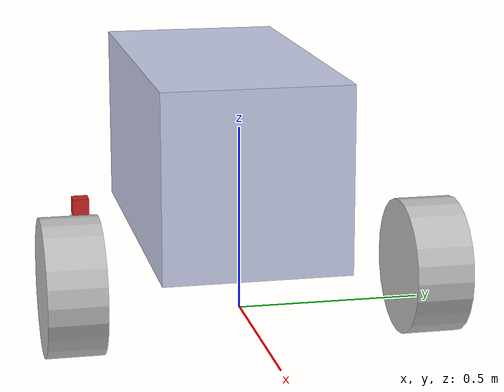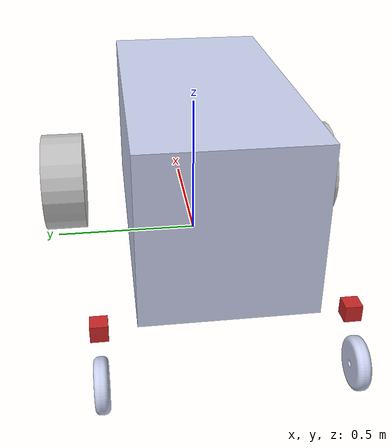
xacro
<?xml version="1.0" ?>
<robot name="caddybot" xmlns:xacro="http://ros.org/wiki/xacro">
  <xacro:include filename="$(find turtlebot3_description)/urdf/common_properties.xacro"/>
  <xacro:include filename="$(find caddybot_urdf)/urdf/caddyboturdf.gazebo.xacro"/>

  <link name="base_footprint"/>

  <joint name="base_joint" type="fixed">
    <parent link="base_footprint"/>
    <child link="base_link"/>
    <origin xyz="0.0 0.0 0.3" rpy="0 0.0 3.14159265359"/>
  </joint>
<link name="imu_link"/>

  <joint name="imu_joint" type="fixed">
    <parent link="base_link"/>
    <child link="imu_link"/>
    <origin xyz="-0.1625 0.0 0.13" rpy="0 0 3.141592"/>
  </joint>

   <link name="unilidar_lidar"/>

  <joint name="unilidar_joint" type="fixed">
    <parent link="base_link"/>
    <child link="unilidar_lidar"/>
    <origin xyz="-0.36 0.0 0.15" rpy="0 1.50970980298 3.141592"/>
  </joint>
   <link name="cam_link"/>

  <joint name="cam_joint" type="fixed">
    <parent link="base_link"/>
    <child link="cam_link"/>
     <origin xyz="-0.31 0.0 0.20" rpy="0 0 3.141592"/>
  </joint>

  <xacro:include filename="$(find realsense2_description)/urdf/_d435.gazebo.xacro"/>
  <xacro:gazebo_d435 camera_name="camera" reference_link="cam_link" topics_ns="camera"
  depth_optical_frame="camera_depth_optical_frame" color_optical_frame="camera_color_optical_frame"
  infrared1_optical_frame="camera_infrared1_optical_frame" infrared2_optical_frame="camera_infrared2_optical_frame"
  publish_pointcloud="true"/>
  <link
    name="base_link">
    <inertial>
      <origin
        xyz="0.13001 0.0030047 0.020182"
        rpy="0 0 0" />
      <mass
        value="23.189" />
      <inertia
        ixx="0.1628"
        ixy="3.4324E-05"
        ixz="-0.0063706"
        iyy="0.21523"
        iyz="-5.4253E-05"
        izz="0.22576" />
    </inertial>
    <visual>
      <origin
        xyz="0.25 0 0.1"
        rpy="0 0 0" />
      <geometry>
        <box size="1 0.5 0.5" />
      </geometry>
      <material
        name="">
        <color
          rgba="0.792156862745098 0.819607843137255 0.933333333333333 1" />
      </material>
    </visual>
    <collision>
      <origin
        xyz="0.25 0 0.1"
        rpy="0 0 0" />
      <geometry>
        <box size="1 0.5 0.5" />
      </geometry>
    </collision>
  </link>

  <link
    name="LeftF_Link">
    <inertial>
      <origin
        xyz="3.5645E-09 2.0638E-08 0.02868"
        rpy="0 0 0" />
      <mass
        value="3.1488" />
      <inertia
        ixx="0.036853"
        ixy="-7.098E-10"
        ixz="-9.4404E-10"
        iyy="0.036853"
        iyz="5.3754E-10"
        izz="0.059899" />
    </inertial>
    <visual>
      <origin
        xyz="0 0 0"
        rpy="0 0 0" />
      <geometry>
        <cylinder radius="0.18" length="0.15"/>
      </geometry>
      <material
        name="">
        <color
          rgba="0.75294 0.75294 0.75294 1" />
      </material>
    </visual>
    <collision>
      <origin
        xyz="0 0 0"
        rpy="0 0 0" />
      <geometry>
        <cylinder radius="0.18" length="0.15"/>
      </geometry>
    </collision>
  </link>
  <joint
    name="LeftFlink"
    type="continuous">
    <origin
      xyz="-0.1625 -0.47151 -0.15967"
      rpy="1.5708 0 3.141592" />
    <parent
      link="base_link" />
    <child
      link="LeftF_Link" />
    <axis
      xyz="0 0 -1" />
  </joint>
  <link
    name="RightF_Link">
    <inertial>
      <origin
        xyz="5.47624412483572E-09 -4.71908490409789E-09 -0.0286797314543985"
        rpy="0 0 0" />
      <mass
        value="3.1488296265046" />
      <inertia
        ixx="0.036853305692685"
        ixy="5.45140823185881E-10"
        ixz="-1.69602894516381E-09"
        iyy="0.0368533056763454"
        iyz="-9.32672289049548E-10"
        izz="0.0598990431182657" />
    </inertial>
    <visual>
      <origin
        xyz="0 0 0"
        rpy="0 0 0" />
      <geometry>
        <cylinder radius="0.18" length="0.15"/>
      </geometry>
      <material
        name="">
        <color
          rgba="0.752941176470588 0.752941176470588 0.752941176470588 1" />
      </material>
    </visual>
    <collision>
      <origin
        xyz="0 0 0"
        rpy="0 0 0" />
      <geometry>
        <cylinder radius="0.18" length="0.15"/>
      </geometry>
    </collision>
  </link>
  <joint
    name="RightFlink"
    type="continuous">
    <origin
      xyz="-0.1625 0.47151 -0.15967"
      rpy="1.5708 0 3.141592" />
    <parent
      link="base_link" />
    <child
      link="RightF_Link" />
    <axis
      xyz="0 0 -1" />
  </joint>
  <link
    name="LB_Link">
    <inertial>
      <origin
        xyz="0 -1.38777878078145E-17 0"
        rpy="0 0 0" />
      <mass
        value="0.672889345058735" />
      <inertia
        ixx="0.00102415281934837"
        ixy="-9.64236297623981E-50"
        ixz="9.32002799941477E-19"
        iyy="0.00102415281934837"
        iyz="-3.93279156307764E-35"
        izz="0.00188210863417053" />
    </inertial>
    <visual>
      <origin
        xyz="0 0 0"
        rpy="0 0 0" />
      <geometry>
        <mesh
          filename="package://caddybot_urdf/meshes/LB_Link.STL" />
      </geometry>
      <material
        name="">
        <color
          rgba="0.792156862745098 0.819607843137255 0.933333333333333 1" />
      </material>
    </visual>
    <collision>
      <origin
        xyz="0 0 0"
        rpy="0 0 0" />
      <geometry>
        <mesh
          filename="package://caddybot_urdf/meshes/LB_Link.STL" />
      </geometry>
    </collision>
  </link>

  <joint
    name="casterLlink"
    type="continuous">
    <origin
      xyz="0.71 -0.35316 -0.179"
      rpy="0 0 0" />
    <parent
      link="base_link" />
    <child
      link="casterL_Link" />
    <axis
      xyz="0 0 1" />
  </joint>

  <link
    name="casterL_Link">
      <origin
        xyz="0 0 0"
        rpy="0 0 0" />
    <inertial>
      <origin
        xyz="0 0 0"
        rpy="0 0 0" />
      <mass
        value="0.31488296265046" />
      <inertia
        ixx="0.036853305692685"
        ixy="0.45140823185881E-10"
        ixz="0.69602894516381E-09"
        iyy="0.0368533056763454"
        iyz="0.32672289049548E-10"
        izz="0.0598990431182657" />
    </inertial>
    <visual>
      <origin
        xyz="0 0 0"
        rpy="0 0 0" />
      <geometry>
        <box size= "0.05 0.05 0.05" />
      </geometry>
    </visual>
  </link>

  <joint
    name="LBlink"
    type="continuous">
    <origin
      xyz="0.088 0 -0.12"
      rpy="-1.5708 0 0" />
    <parent
      link="casterL_Link" />
    <child
      link="LB_Link" />
    <axis
      xyz="0 0 -1" />
  </joint>

  <joint
    name="casterRlink"
    type="continuous">
    <origin
      xyz="0.71 0.35316 -0.179"
      rpy="0 0 0" />
    <parent
      link="base_link" />
    <child
      link="casterR_Link" />
    <axis
      xyz="0 0 1" />
  </joint>

  <link
    name="casterR_Link">
      <origin
        xyz="0 0 0"
        rpy="0 0 0" />
    <inertial>
      <origin
        xyz="0 0 0"
        rpy="0 0 0" />
      <mass
        value="0.31488296265046" />
      <inertia
        ixx="0.036853305692685"
        ixy="0.45140823185881E-10"
        ixz="0.69602894516381E-09"
        iyy="0.0368533056763454"
        iyz="0.32672289049548E-10"
        izz="0.0598990431182657" />
    </inertial>
    <visual>
      <origin
        xyz="0 0 0"
        rpy="0 0 0" />
      <geometry>
        <box size= "0.05 0.05 0.05" />
      </geometry>
    </visual>
  </link>

  <link
    name="RB_Link">
    <inertial>
      <origin
        xyz="0 -1.38777878078145E-17 0"
        rpy="0 0 0" />
      <mass
        value="0.672889345058735" />
      <inertia
        ixx="0.00102415281934837"
        ixy="1.70075227112675E-20"
        ixz="-1.96517608339373E-18"
        iyy="0.00102415281934837"
        iyz="-5.32937046757169E-21"
        izz="0.00188210863417053" />
    </inertial>
    <visual>
      <origin
        xyz="0 0 0"
        rpy="0 0 0" />
      <geometry>
        <mesh
          filename="package://caddybot_urdf/meshes/RB_Link.STL" />
      </geometry>
      <material
        name="">
        <color
          rgba="0.792156862745098 0.819607843137255 0.933333333333333 1" />
      </material>
    </visual>
    <collision>
      <origin
        xyz="0 0 0"
        rpy="0 0 0" />
      <geometry>
        <mesh
          filename="package://caddybot_urdf/meshes/RB_Link.STL" />
      </geometry>
    </collision>
  </link>
  <joint
    name="RBlink"
    type="continuous">
    <origin
      xyz="0.088 0 -0.12"
      rpy="-1.5708 0 0" />
    <parent
      link="casterR_Link" />
    <child
      link="RB_Link" />
    <axis
      xyz="0 0 -1" />
  </joint>

</robot>
